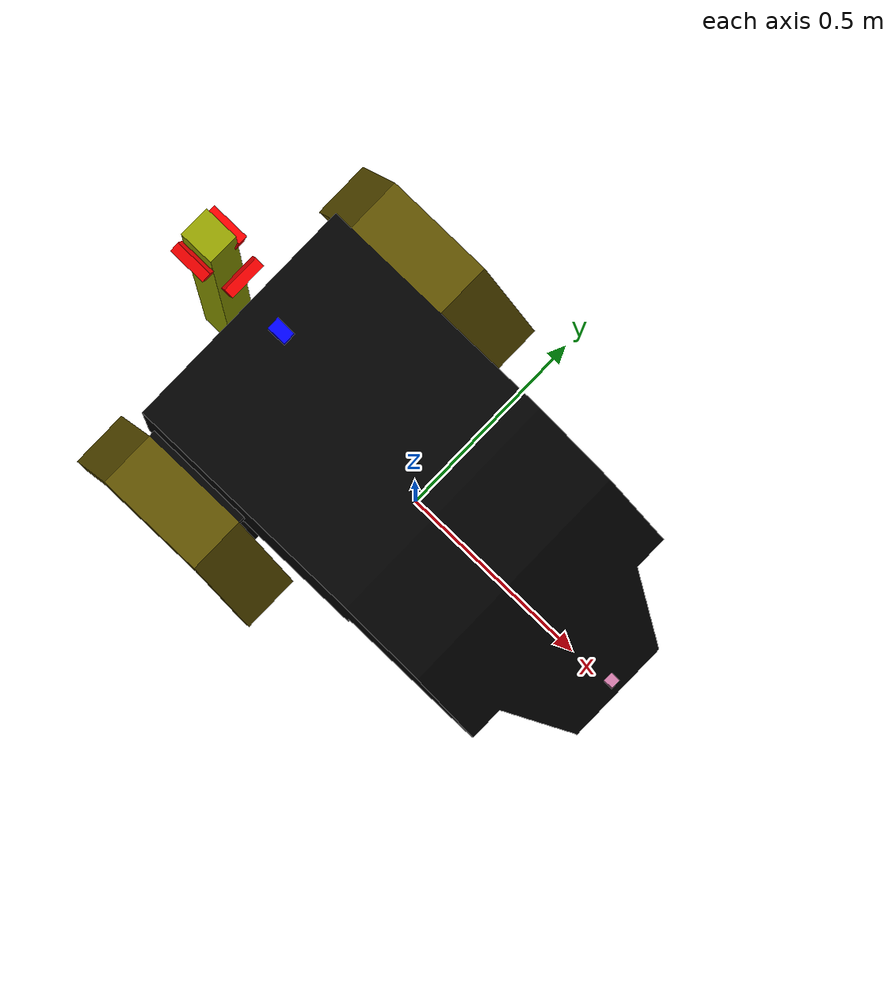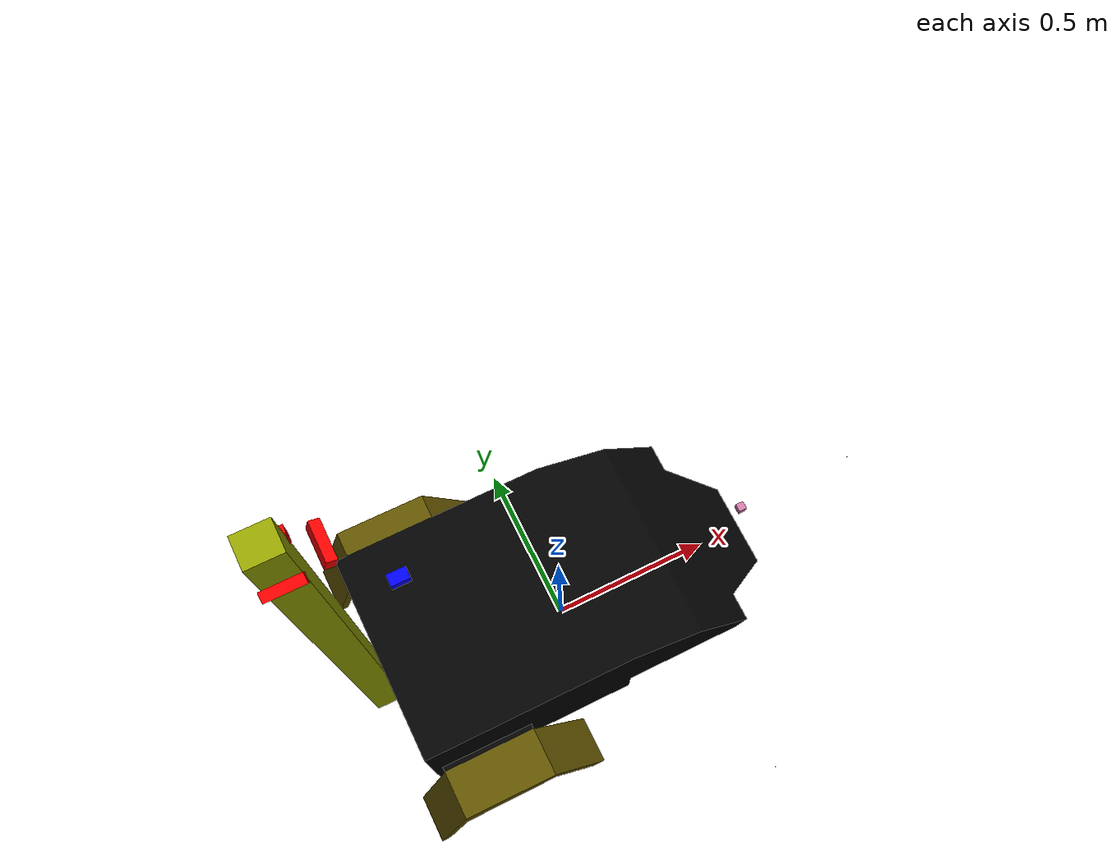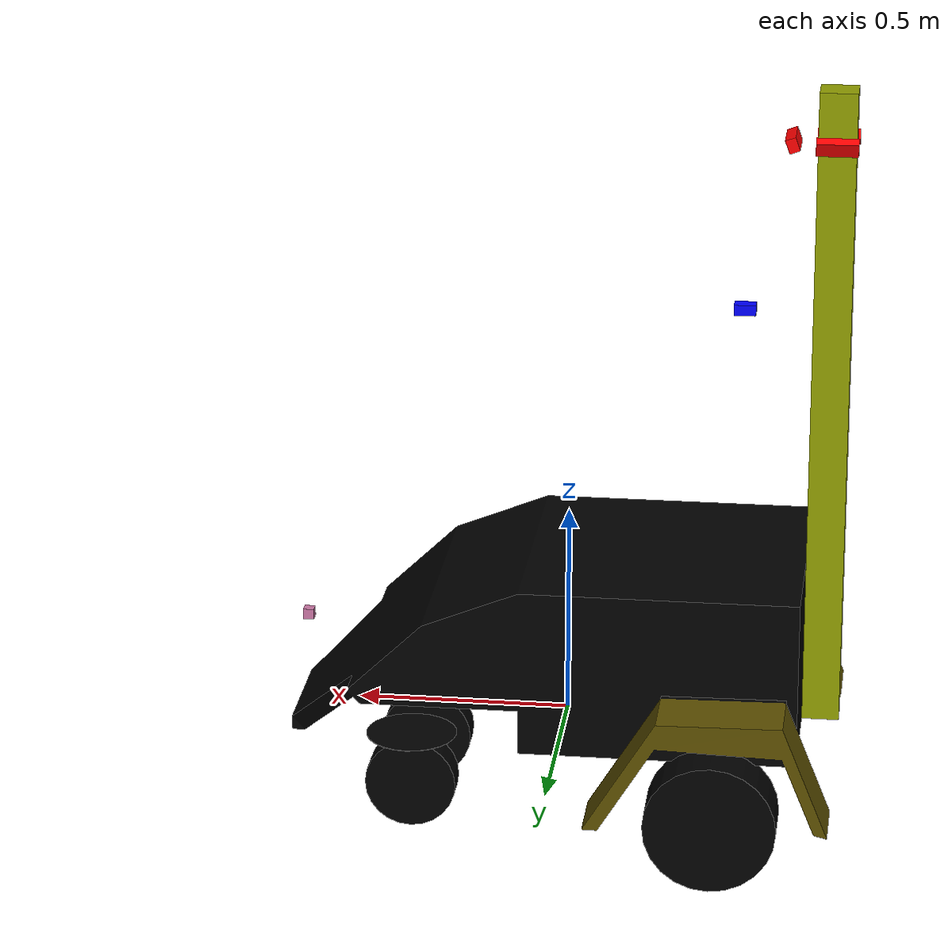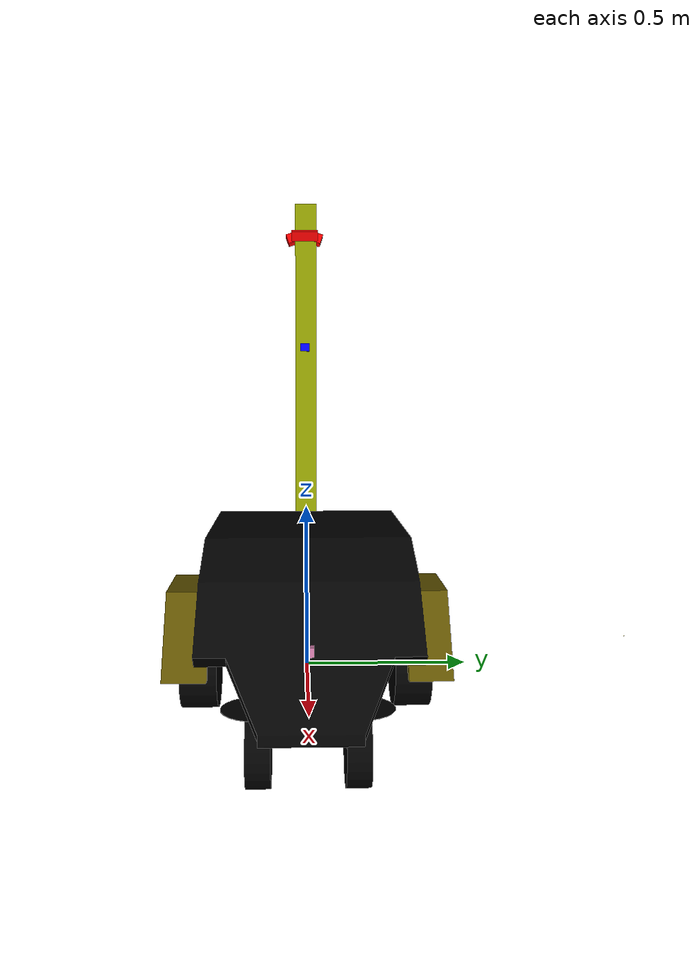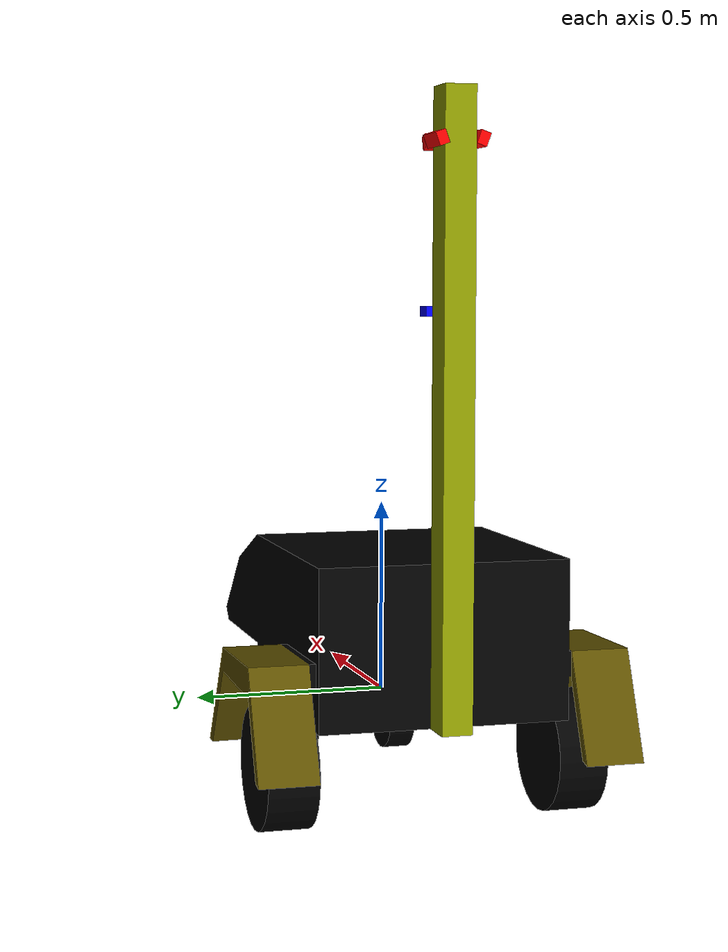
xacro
<?xml version="1.0"?>
<robot name="wheel_only_test" xmlns:xacro="http://www.ros.org/wiki/xacro">

	<!-- Include full igvc library even though we're not using all of it -->
	<xacro:include filename="$(find igvc_description)/urdf/igvc_library.urdf.xacro"/>
	<xacro:include filename="$(find igvc_description)/urdf/igvc_materials.urdf.xacro"/>
	<xacro:include filename="$(find core_description)/urdf/sensors/cameras/c920_camera.urdf.xacro"/>
	<xacro:include filename="$(find core_description)/urdf/sensors/lasers/hokuyo.urdf.xacro"/>
	<xacro:include filename="$(find core_description)/urdf/sensors/imu/sparton_ahrs8.urdf.xacro"/>
	<xacro:include filename="$(find core_description)/urdf/sensors/gps/csi_minimax.urdf.xacro" />
	<xacro:include filename="$(find igvc_description)/urdf/igvc_properties.urdf.xacro"/>

	<!-- Base link -->
	<link name="base_link">
		<visual>
			<geometry>
				<mesh filename="package://igvc_description/meshes/igvc_chassis.DAE" scale="1 1 1" />
			</geometry>
		</visual>
		<collision>
			<geometry>
				<mesh filename="package://igvc_description/meshes/igvc_chassis.DAE" scale="1 1 1" />
			</geometry>
		</collision>
		<inertial>
			<mass value="${chassis_mass}"/>
			<inertia ixx="${chassis_ixx}" ixy="0" ixz="0" iyy="${chassis_iyy}" iyz="0" izz="${chassis_izz}"/>
		</inertial>
		<!-- Gazebo description for base_link -->
		<gazebo reference="base_link"/>
	</link>

	<!-- Base footprint as a reference to the ground beneath robot -->
	<link name="base_footprint">
		<visual>
			<geometry>
				<box size="0.001 0.001 0.001"/>
			</geometry>
			<origin xyz="0 0 0" rpy="0 0 0"/>
		</visual>
		<inertial>
			<mass value="0.0001"/>
			<origin xyz="0 0 0"/>
			<inertia ixx="0.0001" ixy="0.0" ixz="0.0" iyy="0.0001" iyz="0.0" izz="0.0001"/>
		</inertial>
		<gazebo reference="base_footprint"/>
	</link>

	<!-- Joint connecting base_link to the footprint -->
	<joint name="base_footprint_joint" type="fixed">
		<origin xyz="0 0 ${chassis_height/2}"/>
		<parent link="base_footprint"/>
		<child link="base_link"/>
		<gazebo reference="base_footprint_joint"/>
	</joint>

	<!-- Attach front_front_fake_laser frame -->
	<link name="front_fake_laser">
		<visual>
			<geometry>
				<box size="0.001 0.001 0.001" />
			</geometry>
			<origin xyz="0 0 0" rpy="0 0 0"/>
		</visual>
	</link>
	<joint name="front_fake_laser_joint" type="fixed">
		<origin xyz="1.0 0 0"/>
		<parent link="base_link"/>
		<child link="front_fake_laser"/>
	</joint>

	<link name="left_fake_laser">
		<visual>
			<geometry>
				<box size="0.001 0.001 0.001" />
			</geometry>
			<origin xyz="0 0 0" rpy="0 0 0"/>
		</visual>
	</link>
	<joint name="left_fake_laser_joint" type="fixed">
		<origin xyz="0.49 0.845 0" rpy="0 0 0.7854"/>
		<parent link="base_link"/>
		<child link="left_fake_laser"/>
	</joint>

	<link name="right_fake_laser">
		<visual>
			<geometry>
				<box size="0.001 0.001 0.001" />
			</geometry>
			<origin xyz="0 0 0" rpy="0 0 0"/>
		</visual>
	</link>
	<joint name="right_fake_laser_joint" type="fixed">
		<origin xyz="0.33 -0.737 0" rpy="0 0 -0.7854"/>
		<parent link="base_link"/>
		<child link="right_fake_laser"/>
	</joint>

	<!-- Add the wheels -->
	<igvc_wheel parent="base_link" lr="right" reflectY="-1"/>
	<igvc_wheel parent="base_link" lr="left" reflectY="1"/>

	<!-- Add the casters -->
	<igvc_caster parent="base_link" lr="right" reflectY="-1"/>
	<igvc_caster parent="base_link" lr="left" reflectY="1"/>

	<!-- Add a camera -->
	<c920_camera identifier="left" parent="base_link" xPos="-0.6" yPos="0.05" zPos="1.2" roll="0" pitch="0.35" yaw="1.5708"/>
	<c920_camera identifier="front" parent="base_link" xPos="-0.5" yPos="0.0" zPos="1.2" roll="0" pitch="0.35" yaw="0"/>
	<c920_camera identifier="right" parent="base_link" xPos="-0.6" yPos="-0.05" zPos="1.2" roll="0" pitch="0.35" yaw="-1.5708"/>

	<!-- Add a laser -->
	<hokuyo_utm30lx parent="base_link" xPos="0.62" yPos="0" zPos="0" roll="0" pitch="0" yaw="0"/>

	<!-- Add AHRS-8 -->
	<sparton_ahrs8 parent="base_link" xPos="0.0" yPos="0" zPos="0" roll="0" pitch="0" yaw="0"/>

	<!-- Add GPS -->
	<minimax_gps parent="base_link" xPos="-0.4" yPos="0" zPos="0.8" roll="0" pitch="0" yaw="0" />

	<!-- Set up miscellaneous igvc plugins not related to sensors -->
	<igvc_gazebo />

	<gazebo reference="igvc"/>
</robot>

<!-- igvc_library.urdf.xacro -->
<robot xmlns:xacro="http://www.ros.org/wiki/xacro">

	<!-- Library for easy access to all component macros -->
	<!-- If you need igvc_properties or igvc_materials for your macro, include them in the file containing the macro -->

	<!-- IGVC wheel description -->
	<xacro:include filename="$(find igvc_description)/urdf/igvc_wheel.urdf.xacro"/>
	<!-- IGVC caster description -->
	<xacro:include filename="$(find igvc_description)/urdf/igvc_caster.urdf.xacro"/>
	<!-- IGVC gazebo description -->
	<xacro:include filename="$(find igvc_description)/urdf/igvc_gazebo.urdf.xacro"/>

</robot>

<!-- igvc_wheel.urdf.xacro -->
<robot xmlns:xacro="http://www.ros.org/wiki/xacro">

	<!-- Include IGVC vehicle properties -->
	<xacro:include filename="$(find igvc_description)/urdf/igvc_properties.urdf.xacro"/>

	<!-- Macro providing complete description of a wheel, joint, and motor -->
	<!-- A differential drive is assumed here. -->
	<!-- All non-param variables can be found defined in igvc_properties.urdf.xacro -->
	<xacro:macro name="igvc_wheel" params="parent lr reflectY">

		<!-- Wheel link description -->
		<link name="${lr}_wheel">
			<visual>
				<geometry>
					<!-- Change to mesh when we have them??? -->
					<cylinder length="${wheel_width}" radius="${wheel_radius}"/>
				</geometry>
				<origin rpy="${M_PI/2} 0 0"/>
				<material name="black"/>
			</visual>
			<collision>
				<geometry>
					<cylinder length="${wheel_width}" radius="${wheel_radius}"/>
				</geometry>
				<origin rpy="${M_PI/2} 0 0"/>
			</collision>
			<inertial>
				<mass value="${wheel_mass}"/>
				<inertia ixx="${wheel_ixx}" ixy="0" ixz="0" iyy="${wheel_iyy}" iyz="0" izz="${wheel_izz}"/>
			</inertial>
		</link>

		<!-- Wheel link gazebo settings -->
		<gazebo reference="${lr}_wheel">
			<mu1>1.0</mu1>
			<mu2>1.0</mu2>
			<kp>10000000.0</kp>
			<kd>100.0</kd>
		</gazebo>

		<!-- Joint connecting wheel and base -->
		<joint name="${lr}_wheel_joint" type="continuous">
			<parent link="${parent}"/>
			<child link="${lr}_wheel"/>
			<axis xyz="0 1 0"/>
			<origin xyz="${wheel_x_pos} ${reflectY * wheel_y_pos} ${wheel_z_pos}"/>
			<limit effort="100.0" velocity="0.0"/>
		</joint>
		<!-- Wheel joint gazebo settings -->
		<gazebo reference="${lr}_wheel_joint"/>

		<!-- Wheel transmission settings, used for drivetrain -->
		<transmission name="${lr}_wheel_trans">
			<type>transmission_interface/SimpleTransmission</type>
			<joint name="${lr}_wheel_joint">
				<hardwareInterface>EffortJointInterface</hardwareInterface>
			</joint>
			<actuator name="${lr}_wheel_motor">
				<mechanicalReduction>1</mechanicalReduction>
			</actuator>
		</transmission>

	</xacro:macro>

</robot>

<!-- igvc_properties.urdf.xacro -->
<robot xmlns:xacro="http://www.ros.org/wiki/xacro">
	<!-- Mathematical constants -->
	<property name="M_PI" value="3.14159"/>
	<!-- Chassis properties -->
	<property name="chassis_mass" value="62"/>
	<property name="chassis_length" value="1.14"/>
	<property name="chassis_width" value="0.559"/>
	<property name="chassis_height" value="0.42"/>
	<property name="chassis_ixx" value="${(chassis_mass*(chassis_length*chassis_length+chassis_height*chassis_height))/12}"/>
	<property name="chassis_iyy" value="${(chassis_mass*(chassis_height*chassis_height+chassis_width*chassis_width))/12}"/>
	<property name="chassis_izz" value="${(chassis_mass*(chassis_width*chassis_width+chassis_length*chassis_length))/12}"/>
	<!-- Wheel properties -->
	<property name="wheel_mass" value="3.4"/>
	<property name="wheel_width" value="0.127"/>
	<property name="wheel_radius" value="0.153"/>
	<property name="wheel_ixx" value="${(wheel_mass*(3*wheel_radius*wheel_radius + wheel_width*wheel_width))/12}"/>
	<property name="wheel_iyy" value="${(wheel_mass*(3*wheel_radius*wheel_radius + wheel_width*wheel_width))/12}"/>
	<property name="wheel_izz" value="${(wheel_mass*wheel_radius*wheel_radius)/2}"/>
	<property name="wheel_x_pos" value="-${chassis_length/2 - wheel_radius - 0.05}"/>
	<property name="wheel_y_pos" value="${0.3048 + wheel_width/2}"/>
	<property name="wheel_z_pos" value="-${chassis_height/2 + 0.1}"/>
	<!-- Caster properties -->
	<property name="caster_wheel_mass" value="2"/>
	<property name="caster_wheel_width" value="0.071"/>
	<property name="caster_wheel_radius" value="0.107"/>
	<property name="caster_wheel_ixx" value="${(caster_wheel_mass*(3*caster_wheel_radius*caster_wheel_radius + caster_wheel_width*caster_wheel_width))/12}"/>
	<property name="caster_wheel_iyy" value="${(caster_wheel_mass*(3*caster_wheel_radius*caster_wheel_radius + caster_wheel_width*caster_wheel_width))/12}"/>
	<property name="caster_wheel_izz" value="${(caster_wheel_mass*caster_wheel_radius*caster_wheel_radius)/2}"/>
	<!-- Caster rotator properties -->
	<property name="caster_rotator_mass" value="1"/>
	<property name="caster_rotator_width" value="0.001"/>
	<property name="caster_rotator_radius" value="${caster_wheel_radius}"/>
	<property name="caster_rotator_ixx" value="0.001"/>
	<property name="caster_rotator_iyy" value="0.001"/>
	<property name="caster_rotator_izz" value="0.001"/>
	<property name="caster_x_pos" value="${chassis_length/2 - 2*caster_wheel_radius}"/>
	<property name="caster_y_pos" value="${chassis_width/4}"/>
	<property name="caster_z_pos" value="-${chassis_height/2 + 0.025}"/>

	<!-- LIDAR properties -->
</robot>

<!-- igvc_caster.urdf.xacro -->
<robot xmlns:xacro="http://www.ros.org/wiki/xacro">

	<!-- Include IGVC properties and materials -->
	<xacro:include filename="$(find igvc_description)/urdf/igvc_properties.urdf.xacro"/>

	<!-- Complete macro for placing a caster for the IGVC 2015 vehicle -->
	<xacro:macro name="igvc_caster" params="parent lr reflectY">

		<!-- Caster rotator link -->
		<link name="${lr}_caster_rotator">
			<visual>
				<geometry>
					<cylinder length="${caster_rotator_width}" radius="${caster_rotator_radius}"/>
				</geometry>
				<material name="black"/>
			</visual>
			<collision>
				<geometry>
					<cylinder length="${caster_rotator_width}" radius="${caster_rotator_radius}"/>
				</geometry>
			</collision>
			<inertial>
				<mass value="${caster_rotator_mass}"/>
				<inertia ixx="${caster_rotator_ixx}" ixy="0" ixz="0" iyy="${caster_rotator_iyy}" iyz="0" izz="${caster_rotator_izz}"/>
			</inertial>
		</link>

		<gazebo reference="${lr}_caster_rotator"/>

		<!-- Caster rotator joint -->
		<joint name="${lr}_caster_rotator_joint" type="continuous">
			<parent link="${parent}"/>
			<child link="${lr}_caster_rotator"/>
			<axis xyz="0 0 1"/>
			<origin xyz="${caster_x_pos} ${reflectY * caster_y_pos} ${caster_z_pos}"/>
			<limit effort="100.0" velocity="0.0"/>
		</joint>

		<gazebo reference="${lr}_caster_rotator_joint"/>

		<!-- Caster wheel link -->
		<link name="${lr}_caster_wheel">
			<visual>
				<geometry>
					<cylinder length="${caster_wheel_width}" radius="${caster_wheel_radius}"/>
				</geometry>
				<origin rpy="${M_PI/2} 0 0"/>
				<material name="black"/>
			</visual>
			<collision>
				<geometry>
					<cylinder length="${caster_wheel_width}" radius="${caster_wheel_radius}"/>
				</geometry>
				<origin rpy="${M_PI/2} 0 0"/>
			</collision>
			<inertial>
				<mass value="${caster_wheel_mass}"/>
				<inertia ixx="${caster_wheel_ixx}" ixy="0.0" ixz="0.0" iyy="${caster_wheel_iyy}" iyz="0.0" izz="${caster_wheel_izz}"/>
			</inertial>
		</link>

		<!-- Caster wheel Gazebo specification -->
		<gazebo reference="${lr}_caster_wheel">
			<mu1>0.0</mu1>
			<mu2>0.0</mu2>
			<kp>10000000.0</kp>
			<kd>100.0</kd>
		</gazebo>

		<!-- Caster wheel joint -->
		<joint name="${lr}_caster_wheel_joint" type="continuous">
			<parent link="${lr}_caster_rotator"/>
			<child link="${lr}_caster_wheel"/>
			<axis xyz="0 1 0"/>
			<origin xyz="0 0 -${caster_wheel_radius + 0.01}"/>
			<limit effort="100.0" velocity="0.0"/>
		</joint>

		<gazebo reference="${lr}_caster_wheel_joint"/>

	</xacro:macro>
</robot>

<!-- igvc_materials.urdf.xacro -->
<robot>
	<!-- Black material -->
	<material name="black">
		<color rgba="0 0 0 1"/>
	</material>
	<!-- White material -->
	<material name="white">
		<color rgba="1 1 1 1"/>
	</material>
</robot>

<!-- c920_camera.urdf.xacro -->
<robot xmlns:xacro="http://www.ros.org/wiki/xacro">

	<xacro:property name="c920_length" value="0.025"/>
	<xacro:property name="c920_width" value="0.095"/>
	<xacro:property name="c920_height" value="0.033"/>
	<xacro:property name="c920_mass" value="5"/>

	<!-- c920 camera definition macro -->
	<xacro:macro name="c920_camera" params="identifier parent xPos yPos zPos roll pitch yaw">

		<!-- c920 link description -->
		<link name="${identifier}_camera">
			<visual>
				<geometry>
					<box size="${c920_length} ${c920_width} ${c920_height}"/>
				</geometry>
				<origin rpy="0 0 0"/>
				<material name="red">
					<color rgba="1 0 0 1"/>
				</material>
			</visual>
			<collision>
				<geometry>
					<box size="${c920_length} ${c920_width} ${c920_height}"/>
				</geometry>
			</collision>
			<inertial>
				<mass value="${c920_mass}"/>
				<inertia ixx="0.001" ixy="0" ixz="0" iyy="0.001" iyz="0" izz="0.001"/>
			</inertial>
		</link>

		<!-- c920 Gazebo link reference -->
		<!-- Camera reference in Gazebo -->
		<gazebo reference="${identifier}_camera">
			<sensor type="camera" name="${identifier}_camera">
				<update_rate>30.0</update_rate>
				<camera name="${identifier}">
					<horizontal_fov>1.57057</horizontal_fov>
					<image>
						<width>1280</width>
						<height>720</height>
						<format>R8G8B8</format>
					</image>
					<clip>
						<near>0.02</near>
						<far>300</far>
					</clip>
				</camera>
				<!-- Set up Gazebo plugin for the camera -->
				<plugin name="camera_controller" filename="libgazebo_ros_camera.so">
					<alwaysOn>true</alwaysOn>
					<updateRate>0.0</updateRate>
					<cameraName>${identifier}_camera</cameraName>
					<imageTopicName>image_raw</imageTopicName>
					<cameraInfoTopicName>camera_info</cameraInfoTopicName>
					<frameName>${identifier}_camera</frameName>
				</plugin>
			</sensor>
		</gazebo>

		<!-- c920 joint from parent -->
		<joint name="${identifier}_camera_joint" type="fixed">
			<parent link="${parent}"/>
			<child link="${identifier}_camera"/>
			<origin xyz="${xPos} ${yPos} ${zPos}" rpy="${roll} ${pitch} ${yaw}"/>
		</joint>

		<gazebo reference="${identifier}_camera_joint"/>

	</xacro:macro>

</robot>

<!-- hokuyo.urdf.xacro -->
<robot name="sensor_hokuyo" xmlns:xacro="http://ros.org/wiki/xacro">

    <xacro:property name="utm30lx_mass" value="0.000001"/>
    <xacro:property name="utm30lx_length" value="0.025"/>
    <xacro:property name="utm30lx_width" value="0.025"/>
    <xacro:property name="utm30lx_height" value="0.025"/>

    <!-- Hokuyo 2D LIDAR -->
    <xacro:macro name="hokuyo_utm30lx" params="parent xPos yPos zPos roll pitch yaw">
        <joint name="base_laser_joint" type="fixed">
            <origin xyz="${xPos} ${yPos} ${zPos}" rpy="${roll} ${pitch} ${yaw}" />
            <parent link="${parent}" />
            <child link="base_laser" />
        </joint>

        <link name="base_laser">
            <visual>
                <origin xyz="0 0 0" rpy="0 0 0"/>
                <geometry>
                    <box size="${utm30lx_length} ${utm30lx_width} ${utm30lx_height}"/>
                </geometry>
            </visual>
            <inertial>
                <mass value="${utm30lx_mass}" />
                <origin xyz="0 0 0" />
                <inertia ixx="0.0001" ixy="0.0" ixz="0.0"
                    iyy="0.0001" iyz="0.0"
                    izz="0.0001" />
            </inertial>
        </link>

        <!-- Set up laser gazebo details -->
        <gazebo reference="base_laser">
            <sensor type="ray" name="laser">
                <pose>0 0 0 0 0 0</pose>
                <visualize>false</visualize>
                <update_rate>40</update_rate>
                <ray>
                    <scan>
                        <horizontal>
                            <samples>1080</samples>
                            <resolution>1</resolution>
                            <min_angle>-2.3562</min_angle>
                            <max_angle>2.3562</max_angle>
                        </horizontal>
                    </scan>
                    <range>
                        <min>0.10</min>
                        <max>30.0</max>
                        <resolution>0.01</resolution>
                    </range>
                </ray>
                <plugin name="hokuyo_node" filename="libgazebo_ros_laser.so">
                    <topicName>/scan</topicName>
                    <frameName>base_laser</frameName>
                </plugin>
            </sensor>
        </gazebo>
    </xacro:macro>
</robot>

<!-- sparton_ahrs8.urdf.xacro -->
<robot xmlns:xacro="http://ros.org/wiki/xacro" >

    <xacro:property name="ahrs8_mass" value="0.000001" />
    <xacro:property name="ahrs8_length" value="0.05" />
    <xacro:property name="ahrs8_width" value="0.032" />
    <xacro:property name="ahrs8_height" value="0.025" />

    <xacro:macro name="sparton_ahrs8" params="parent xPos yPos zPos roll pitch yaw" >

        <link name="ahrs8_imu" >
            <visual>
                <origin xyz="0 0 0" rpy="0 0 0" />
                <geometry>
                    <box size="${ahrs8_length} ${ahrs8_width} ${ahrs8_height}" />
                </geometry>
                <material name="blue" >
                    <color rgba="0 0 1 1" />
                </material>
            </visual>
            <collision>
                <geometry>
                    <box size="${ahrs8_length} ${ahrs8_width} ${ahrs8_height}" />
                </geometry>
            </collision>
            <inertial>
                <mass value="${ahrs8_mass}" />
                <inertia ixx="0.0001" ixy="0.0" ixz="0.0"
                    iyy="0.0001" iyz="0.0" izz="0.0001" />
            </inertial>
        </link>

        <gazebo reference="ahrs8_imu" />

        <joint name="ahrs8_imu_joint" type="fixed" >
            <parent link="${parent}" />
            <child link="ahrs8_imu" />
            <origin xyz="${xPos} ${yPos} ${zPos}" rpy="${roll} ${pitch} ${yaw}" />
        </joint>

        <gazebo reference="ahrs8_imu_joint" />
    </xacro:macro>
</robot>

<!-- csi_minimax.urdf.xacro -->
<robot xmlns:xacro="http://ros.org/wiki/xacro" >

    <xacro:property name="minimax_mass" value="0.000001" />
    <xacro:property name="minimax_length" value="0.05" />
    <xacro:property name="minimax_width" value="0.032" />
    <xacro:property name="minimax_height" value="0.025" />

    <xacro:macro name="minimax_gps" params="parent xPos yPos zPos roll pitch yaw" >

        <link name="gps" >
            <visual>
                <origin xyz="0 0 0" rpy="0 0 0" />
                <geometry>
                    <box size="${minimax_length} ${minimax_width} ${minimax_height}" />
                </geometry>
                <material name="blue" >
                    <color rgba="0 0 1 1" />
                </material>
            </visual>
            <collision>
                <geometry>
                    <box size="${minimax_length} ${minimax_width} ${minimax_height}" />
                </geometry>
            </collision>
            <inertial>
                <mass value="${minimax_mass}" />
                <inertia ixx="0.0001" ixy="0.0" ixz="0.0"
                    iyy="0.0001" iyz="0.0" izz="0.0001" />
            </inertial>
        </link>

        <gazebo reference="gps" />

        <joint name="gps_joint" type="fixed" >
            <parent link="${parent}" />
            <child link="gps" />
            <origin xyz="${xPos} ${yPos} ${zPos}" rpy="${roll} ${pitch} ${yaw}" />
        </joint>

        <gazebo reference="gps_joint" />
    </xacro:macro>
</robot>
